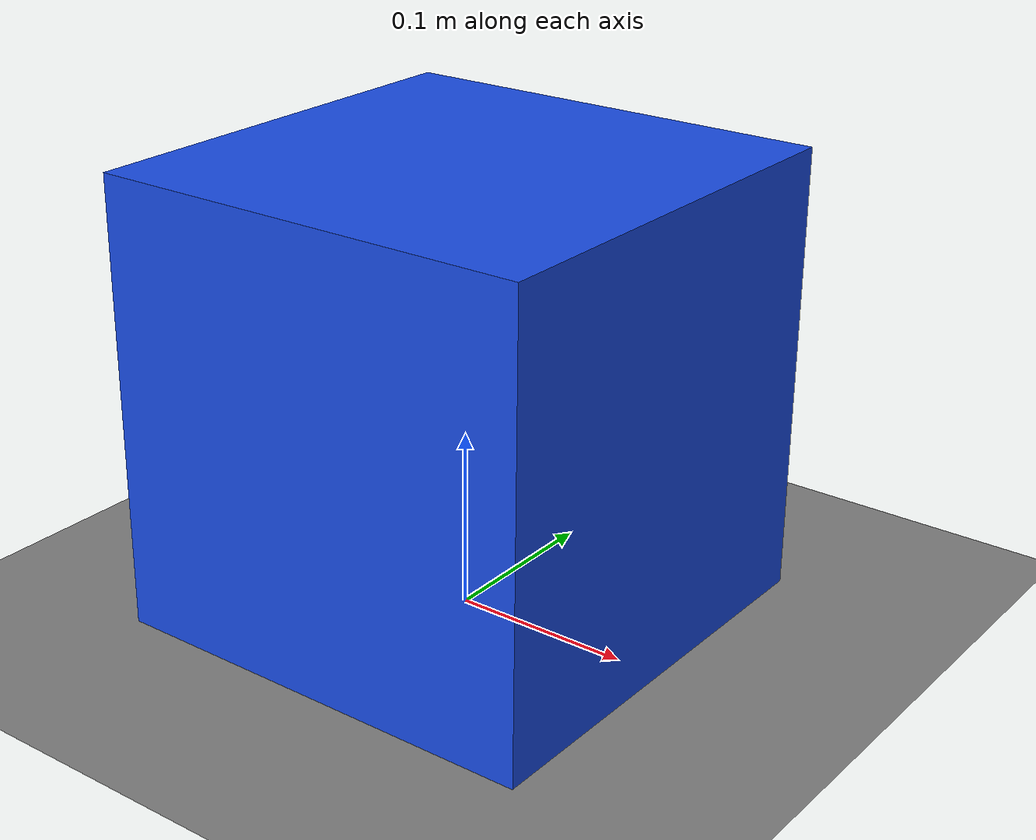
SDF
<?xml version="1.0"?>
<sdf version="1.9">

  <world name="s1_world">

    <physics name="physics" type="ignored">
      <max_step_size>0.001</max_step_size>
      <real_time_factor>1.0</real_time_factor>
    </physics>

    <plugin
      filename="gz-sim-physics-system"
      name="gz::sim::systems::Physics">
    </plugin>

    <plugin
      filename="gz-sim-user-commands-system"
      name="gz::sim::systems::UserCommands">
    </plugin>

    <plugin
      filename="gz-sim-scene-broadcaster-system"
      name="gz::sim::systems::SceneBroadcaster">
    </plugin>

    <plugin
      filename="gz-sim-sensors-system"
      name="gz::sim::systems::Sensors">
      <render_engine>ogre2</render_engine>
    </plugin>

    <!-- LIGHT -->

    <light type="directional" name="sun">
      <pose>0 0 10 0 0 0</pose>
      <diffuse>0.8 0.8 0.8 1</diffuse>
      <specular>0.2 0.2 0.2 1</specular>
      <direction>-0.5 0.1 -0.9</direction>
    </light>

    <!-- GROUND -->

    <model name="ground">
      <static>true</static>

      <link name="ground_link">

        <collision name="collision">
          <geometry>
            <plane>
              <normal>0 0 1</normal>
              <size>30 30</size>
            </plane>
          </geometry>
        </collision>

        <visual name="visual">
          <geometry>
            <plane>
              <normal>0 0 1</normal>
              <size>30 30</size>
            </plane>
          </geometry>

          <material>
            <ambient>0.5 0.5 0.5 1</ambient>
            <diffuse>0.5 0.5 0.5 1</diffuse>
          </material>
        </visual>

      </link>
    </model>

    <!-- ROBOT -->

    <model name="robot" canonical_link="base_link">

      <pose>0 0 0.125 0 0 0</pose>

      <link name="base_link">

        <gravity>true</gravity>

        <inertial>
          <mass>5.0</mass>

          <inertia>
            <ixx>0.2</ixx>
            <iyy>0.2</iyy>
            <izz>0.2</izz>
            <ixy>0</ixy>
            <ixz>0</ixz>
            <iyz>0</iyz>
          </inertia>
        </inertial>

        <collision name="collision">
          <geometry>
            <box>
              <size>0.25 0.25 0.25</size>
            </box>
          </geometry>
        </collision>

        <visual name="visual">
          <geometry>
            <box>
              <size>0.25 0.25 0.25</size>
            </box>
          </geometry>

          <material>
            <ambient>0.1 0.3 0.9 1</ambient>
            <diffuse>0.1 0.3 0.9 1</diffuse>
          </material>
        </visual>

        <!-- LIDAR -->

        <sensor name="lidar" type="gpu_lidar">

          <pose>0 0 0.30 0 0 0</pose>

          <topic>/scan</topic>

          <update_rate>10</update_rate>

          <ray>
            <scan>
              <horizontal>
                <samples>720</samples>
                <resolution>1</resolution>

                <min_angle>-3.14159265</min_angle>
                <max_angle>3.14159265</max_angle>
              </horizontal>

              <vertical>
                <samples>1</samples>
                <resolution>1</resolution>
                <min_angle>0</min_angle>
                <max_angle>0</max_angle>
              </vertical>
            </scan>

            <range>
              <min>0.10</min>
              <max>12.0</max>
              <resolution>0.01</resolution>
            </range>
          </ray>

          <always_on>true</always_on>

          <visualize>true</visualize>

        </sensor>

      </link>

      <!-- Invisible guide links form an x/y/yaw joint chain to the world.
           This physically locks z, roll and pitch while preserving planar motion. -->
      <link name="ground_x_link">
        <inertial><mass>0.01</mass><inertia>
          <ixx>0.001</ixx><iyy>0.001</iyy><izz>0.001</izz>
        </inertia></inertial>
      </link>
      <link name="ground_y_link">
        <inertial><mass>0.01</mass><inertia>
          <ixx>0.001</ixx><iyy>0.001</iyy><izz>0.001</izz>
        </inertia></inertial>
      </link>
      <joint name="ground_x" type="prismatic">
        <parent>world</parent><child>ground_x_link</child>
        <axis><xyz>1 0 0</xyz></axis>
      </joint>
      <joint name="ground_y" type="prismatic">
        <parent>ground_x_link</parent><child>ground_y_link</child>
        <axis><xyz>0 1 0</xyz></axis>
      </joint>
      <joint name="ground_yaw" type="revolute">
        <parent>ground_y_link</parent><child>base_link</child>
        <axis><xyz>0 0 1</xyz></axis>
      </joint>

      <plugin
        filename="libs1_planar_drive.so"
        name="s1::PlanarDrive">

        <topic>/model/robot/cmd_vel</topic>

      </plugin>

      <plugin
        filename="gz-sim-odometry-publisher-system"
        name="gz::sim::systems::OdometryPublisher">

        <odom_frame>odom</odom_frame>
        <robot_base_frame>base_link</robot_base_frame>

        <odom_publish_frequency>30</odom_publish_frequency>

        <odom_topic>/model/robot/odometry</odom_topic>

      </plugin>

    </model>

  <!-- RANDOM OBSTACLES -->

  </world>

</sdf>
